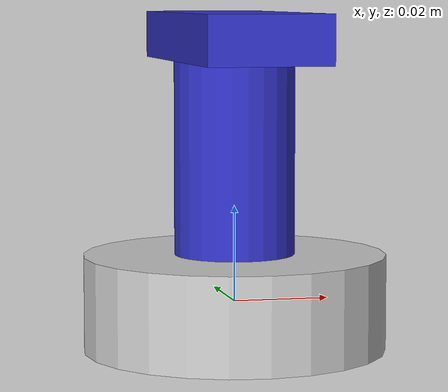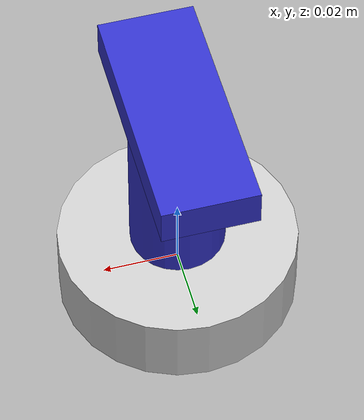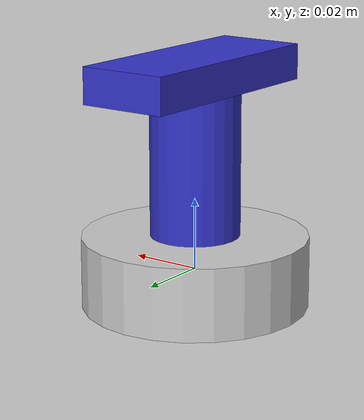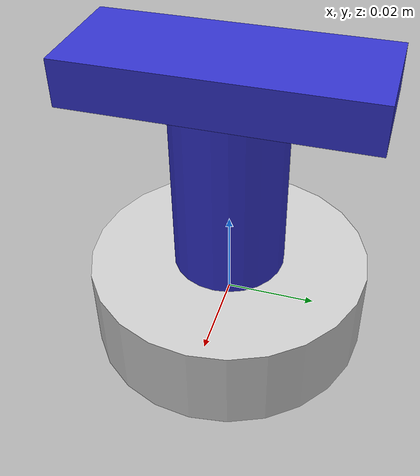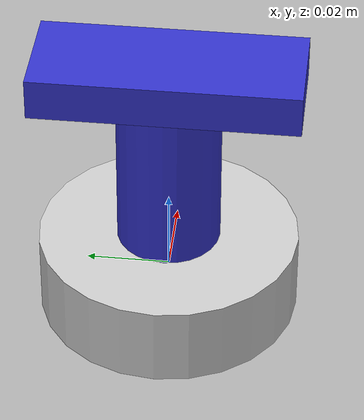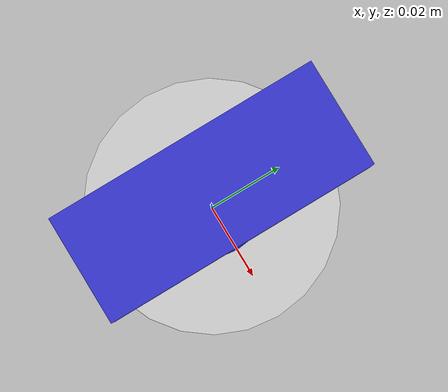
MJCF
<mujoco model="assembly_ee">
  <compiler angle="radian" />

  <asset>
    <texture type="2d" name="peg_ee" builtin="flat" rgb1="0.2 0.2 0.8" width="300" height="300"/>
    <texture type="2d" name="peg_ee_base" builtin="flat" rgb1="0.8 0.8 0.8" width="300" height="300"/>

    <material name="peg_ee" texture="peg_ee"/>
    <material name="peg_ee_base" texture="peg_ee_base"/>
  </asset>

  <worldbody>
    <!-- Base: positioned so that its bottom touches z=0 -->
    <body name="base" pos="0 0 0">
      <geom name="base_geom" type="cylinder" size="0.0315 0.01" material="peg_ee_base"/>

      <!-- Cylinder: attached on top of the base -->
      <!-- The cylinder body is positioned so that its center is 0.03 m above the base's center,
           meaning its bottom (center - 0.02 m) aligns with the top of the base at z=0.02 -->
      <body name="cylinder" pos="0 0 0.03">
        <geom name="cylinder_geom" type="cylinder" size="0.0125 0.02" material="peg_ee"/>

        <!-- Tip: attached on top of the cylinder -->
        <!-- Positioned so that its center is 0.03 m above the cylinder's center (0.02 m to reach the top of the cylinder plus 0.01 m half-depth of the tip) -->
        <body name="tip" pos="0 0 0.025" euler = "0 0 1.5704">
          <!-- Tip geom: box with half-sizes (0.02, 0.0125, 0.01) corresponding to (40mm, 25mm, 20mm) overall -->
          <geom name="tip_geom" type="box" size="0.0315 0.0125 0.005" material="peg_ee"/>
          <site name="tip_site" pos="0 0 0.0" euler="3.14159 0 0" group="5"/>
        </body>
      </body>
    </body>
  </worldbody>
</mujoco>
